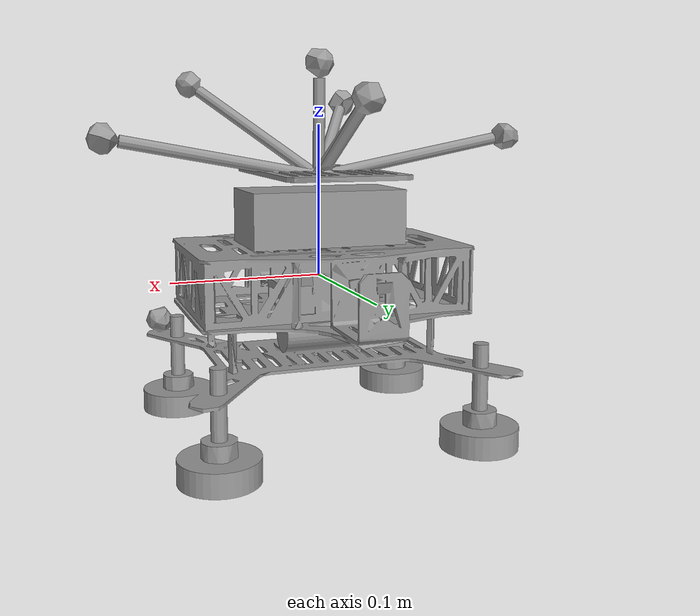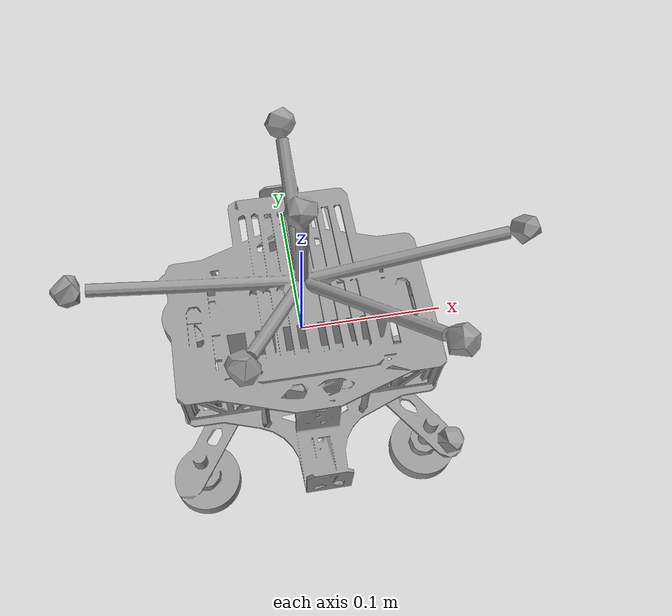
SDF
<?xml version="1.0" ?>

  <sdf version="1.5">
    <model name="usl_bv2_second_base">

      <link name="base">
      <pose>0 0 0.0  0 0 0</pose>
      <inertial>
        <pose>0 0 0 0 0 0</pose>
        <mass>1.0</mass>
        <inertia>
          <ixx>0.1</ixx>
          <iyy>0.2</iyy>
          <izz>0.1</izz>
          <ixy>0</ixy>
          <ixz>0</ixz>
          <iyz>0</iyz>
        </inertia>
      </inertial>
      <collision name="base_collision">
        <pose>0 0 0  0 0 0</pose>
        <geometry>
          <mesh>
            <uri>model://usl_bv2_second_base/meshes/base.dae</uri>
          </mesh>
        </geometry>
        <surface>
          <contact>
            <ode/>
          </contact>
          <friction>
            <ode>
              <min_depth>0.001</min_depth>
              <max_vel>0.1</max_vel>
              <kp>1e6</kp> <!-- 接触刚度 -->
              <kd>1e3</kd> <!-- 接触阻尼 -->
            </ode>
          </friction>
        </surface>
      </collision>
      <visual name="base_visual">
        <geometry>
          <mesh>
            <uri>model://usl_bv2_second_base/meshes/base.dae</uri>
          </mesh>
        </geometry>
        <material>
          <script>
            <name>Gazebo/Grey</name>
          </script>
        </material>
      </visual>
    </link>
    <link name='imu_link'>
    <inertial>
      <pose>0 0 0 0 0 0</pose>
      <mass>0.15</mass>
      <inertia>
        <ixx>0.00001</ixx>
        <ixy>0</ixy>
        <ixz>0</ixz>
        <iyy>0.00002</iyy>
        <iyz>0</iyz>
        <izz>0.00002</izz>
      </inertia>
    </inertial>
    <sensor name="imu_sensor" type="imu">
      <pose>0 0 0 3.141593 0 0</pose>
      <always_on>1</always_on>
      <update_rate>1000.0</update_rate>
      <topic>__default_topic__</topic>
    </sensor>
  </link>
  <joint name='imu_joint' type='revolute'>
    <child>imu_link</child>
    <parent>base</parent>
    <axis>
      <xyz>0 0 1</xyz>
      <limit>
        <lower>-0.0001</lower>
        <upper>0.00001</upper>
        <effort>0</effort>
        <velocity>0</velocity>
      </limit>
      <dynamics>
        <damping>1.0</damping>
      </dynamics>
      <use_parent_model_frame>1</use_parent_model_frame>
    </axis>
    <physics>
      <ode>
        <implicit_spring_damper>1</implicit_spring_damper>
      </ode>
    </physics>
  </joint>
  <gazebo reference="base">
    <sensor name="contact_sensor" type="contact">
      <plugin filename="libgazebo_ros_bumper.so" name="gazebo_ros_bumper_controller"/>
    </sensor>
    <surface>
      <friction>
        <ode><mu>1.5</mu></ode> <!-- 提高摩擦系数 -->
      </friction>
    </surface>
  </gazebo>
  <plugin name="suction_plugin" filename="libgazebo_ros_force.so">
    <bodyName>base</bodyName>
    <topicName>suction_force</topicName>
  </plugin>

</model>
</sdf>
